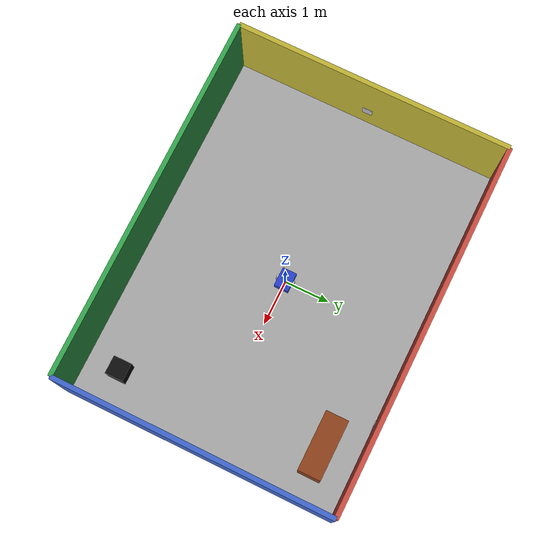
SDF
<?xml version="1.0"?>
<sdf version="1.11">
  <world name="max_indoor">
    <physics name="1ms" type="ignored">
      <max_step_size>0.001</max_step_size>
      <real_time_factor>1.0</real_time_factor>
    </physics>
    <plugin filename="gz-sim-physics-system" name="gz::sim::systems::Physics"/>
    <plugin filename="gz-sim-user-commands-system" name="gz::sim::systems::UserCommands"/>
    <plugin filename="gz-sim-scene-broadcaster-system" name="gz::sim::systems::SceneBroadcaster"/>
    <plugin filename="gz-sim-sensors-system" name="gz::sim::systems::Sensors">
      <render_engine>ogre2</render_engine>
    </plugin>

    <light name="sun" type="directional">
      <cast_shadows>true</cast_shadows>
      <pose>0 0 8 0 0 0</pose>
      <diffuse>0.9 0.9 0.9 1</diffuse>
      <direction>-0.4 0.2 -1</direction>
    </light>

    <model name="floor">
      <static>true</static>
      <link name="link">
        <collision name="collision"><geometry><box><size>8 6 0.1</size></box></geometry></collision>
        <visual name="visual">
          <geometry><box><size>8 6 0.1</size></box></geometry>
          <material><diffuse>0.65 0.65 0.65 1</diffuse></material>
        </visual>
      </link>
    </model>

    <model name="north_wall">
      <static>true</static><pose>0 3 1 0 0 0</pose>
      <link name="link"><collision name="collision"><geometry><box><size>8 0.1 2</size></box></geometry></collision>
      <visual name="visual"><geometry><box><size>8 0.1 2</size></box></geometry><material><diffuse>0.8 0.3 0.25 1</diffuse></material></visual></link>
    </model>
    <model name="south_wall">
      <static>true</static><pose>0 -3 1 0 0 0</pose>
      <link name="link"><collision name="collision"><geometry><box><size>8 0.1 2</size></box></geometry></collision>
      <visual name="visual"><geometry><box><size>8 0.1 2</size></box></geometry><material><diffuse>0.2 0.65 0.3 1</diffuse></material></visual></link>
    </model>
    <model name="east_wall">
      <static>true</static><pose>4 0 1 0 0 0</pose>
      <link name="link"><collision name="collision"><geometry><box><size>0.1 6 2</size></box></geometry></collision>
      <visual name="visual"><geometry><box><size>0.1 6 2</size></box></geometry><material><diffuse>0.25 0.4 0.8 1</diffuse></material></visual></link>
    </model>
    <model name="west_wall">
      <static>true</static><pose>-4 0 1 0 0 0</pose>
      <link name="link"><collision name="collision"><geometry><box><size>0.1 6 2</size></box></geometry></collision>
      <visual name="visual"><geometry><box><size>0.1 6 2</size></box></geometry><material><diffuse>0.75 0.7 0.2 1</diffuse></material></visual></link>
    </model>

    <model name="pickup_counter">
      <static>true</static><pose>2.8 2.2 0.45 0 0 0</pose>
      <link name="link"><collision name="collision"><geometry><box><size>1.3 0.5 0.9</size></box></geometry></collision>
      <visual name="visual"><geometry><box><size>1.3 0.5 0.9</size></box></geometry><material><diffuse>0.55 0.25 0.1 1</diffuse></material></visual></link>
    </model>

    <model name="tag_home">
      <static>true</static><pose>-3.93 0 0.7 0 0 0</pose>
      <link name="link"><visual name="visual"><geometry><box><size>0.01 0.225 0.225</size></box></geometry>
      <material><pbr><metal><albedo_map>model://max_robot/tag36h11_0.pgm</albedo_map></metal></pbr></material></visual></link>
    </model>
    <model name="tag_turn">
      <static>true</static><pose>3.93 0 0.7 0 0 0</pose>
      <link name="link"><visual name="visual"><geometry><box><size>0.01 0.225 0.225</size></box></geometry>
      <material><pbr><metal><albedo_map>model://max_robot/tag36h11_1.pgm</albedo_map></metal></pbr></material></visual></link>
    </model>
    <model name="tag_pickup">
      <static>true</static><pose>2 2.93 0.7 0 0 0</pose>
      <link name="link"><visual name="visual"><geometry><box><size>0.225 0.01 0.225</size></box></geometry>
      <material><pbr><metal><albedo_map>model://max_robot/tag36h11_2.pgm</albedo_map></metal></pbr></material></visual></link>
    </model>

    <model name="movable_obstruction">
      <pose>3.2 -2.2 0.25 0 0 0</pose>
      <link name="link">
        <inertial><mass>1</mass><inertia><ixx>0.04</ixx><iyy>0.04</iyy><izz>0.04</izz></inertia></inertial>
        <collision name="collision"><geometry><box><size>0.4 0.4 0.5</size></box></geometry></collision>
        <visual name="visual"><geometry><box><size>0.4 0.4 0.5</size></box></geometry><material><diffuse>0.05 0.05 0.05 1</diffuse></material></visual>
      </link>
    </model>

    <include><uri>model://max_robot</uri></include>
  </world>
</sdf>

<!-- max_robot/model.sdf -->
<sdf version="1.11">
  <model name="max">
    <pose>0 0 0.13 0 0 0</pose>
    <link name="base_link">
      <inertial>
        <mass>5</mass>
        <inertia>
          <ixx>0.08</ixx><iyy>0.10</iyy><izz>0.12</izz>
          <ixy>0</ixy><ixz>0</ixz><iyz>0</iyz>
        </inertia>
      </inertial>
      <collision name="body_collision">
        <geometry><box><size>0.42 0.32 0.18</size></box></geometry>
      </collision>
      <visual name="body_visual">
        <geometry><box><size>0.42 0.32 0.18</size></box></geometry>
        <material><diffuse>0.15 0.25 0.8 1</diffuse></material>
      </visual>
      <sensor name="camera" type="camera">
        <pose>0.19 0 0.12 0 0 0</pose>
        <topic>/camera</topic>
        <update_rate>30</update_rate>
        <camera>
          <horizontal_fov>1.15</horizontal_fov>
          <image><width>640</width><height>480</height><format>R8G8B8</format></image>
          <clip><near>0.05</near><far>20</far></clip>
        </camera>
        <always_on>true</always_on>
      </sensor>
    </link>

    <link name="left_wheel">
      <pose>0 0.18 0 1.5708 0 0</pose>
      <inertial><mass>0.25</mass><inertia><ixx>0.001</ixx><iyy>0.001</iyy><izz>0.001</izz></inertia></inertial>
      <collision name="collision"><geometry><cylinder><radius>0.065</radius><length>0.035</length></cylinder></geometry></collision>
      <visual name="visual"><geometry><cylinder><radius>0.065</radius><length>0.035</length></cylinder></geometry></visual>
    </link>
    <joint name="left_wheel_joint" type="revolute">
      <parent>base_link</parent><child>left_wheel</child>
      <axis><xyz>0 1 0</xyz></axis>
    </joint>

    <link name="right_wheel">
      <pose>0 -0.18 0 1.5708 0 0</pose>
      <inertial><mass>0.25</mass><inertia><ixx>0.001</ixx><iyy>0.001</iyy><izz>0.001</izz></inertia></inertial>
      <collision name="collision"><geometry><cylinder><radius>0.065</radius><length>0.035</length></cylinder></geometry></collision>
      <visual name="visual"><geometry><cylinder><radius>0.065</radius><length>0.035</length></cylinder></geometry></visual>
    </link>
    <joint name="right_wheel_joint" type="revolute">
      <parent>base_link</parent><child>right_wheel</child>
      <axis><xyz>0 1 0</xyz></axis>
    </joint>

    <link name="rear_caster">
      <pose>-0.16 0 -0.055 0 0 0</pose>
      <inertial><mass>0.1</mass><inertia><ixx>0.0001</ixx><iyy>0.0001</iyy><izz>0.0001</izz></inertia></inertial>
      <collision name="collision"><geometry><sphere><radius>0.025</radius></sphere></geometry></collision>
      <visual name="visual"><geometry><sphere><radius>0.025</radius></sphere></geometry></visual>
    </link>
    <joint name="rear_caster_joint" type="fixed">
      <parent>base_link</parent><child>rear_caster</child>
    </joint>

    <plugin filename="gz-sim-diff-drive-system" name="gz::sim::systems::DiffDrive">
      <left_joint>left_wheel_joint</left_joint>
      <right_joint>right_wheel_joint</right_joint>
      <wheel_separation>0.36</wheel_separation>
      <wheel_radius>0.065</wheel_radius>
      <topic>/cmd_vel</topic>
      <odom_topic>/wheel/odom</odom_topic>
      <frame_id>odom</frame_id>
      <child_frame_id>base_link</child_frame_id>
    </plugin>
    <plugin filename="gz-sim-joint-state-publisher-system" name="gz::sim::systems::JointStatePublisher"/>
  </model>
</sdf>
